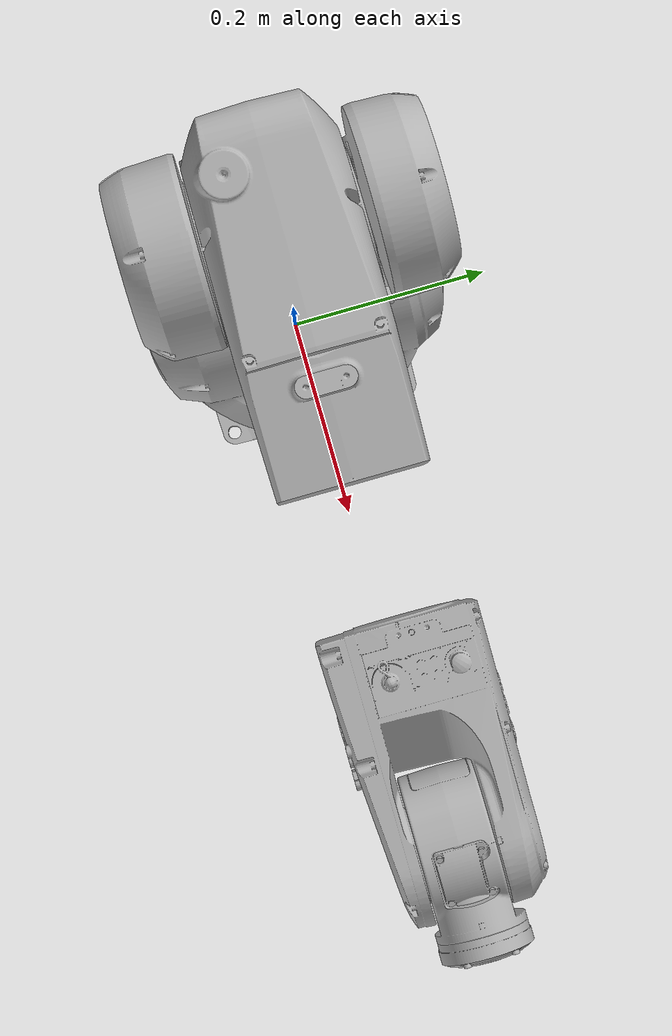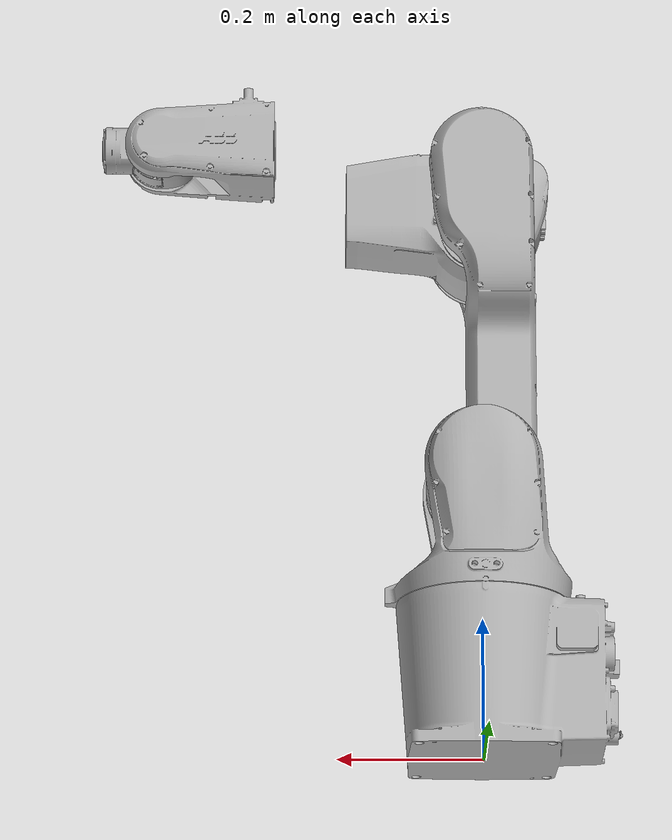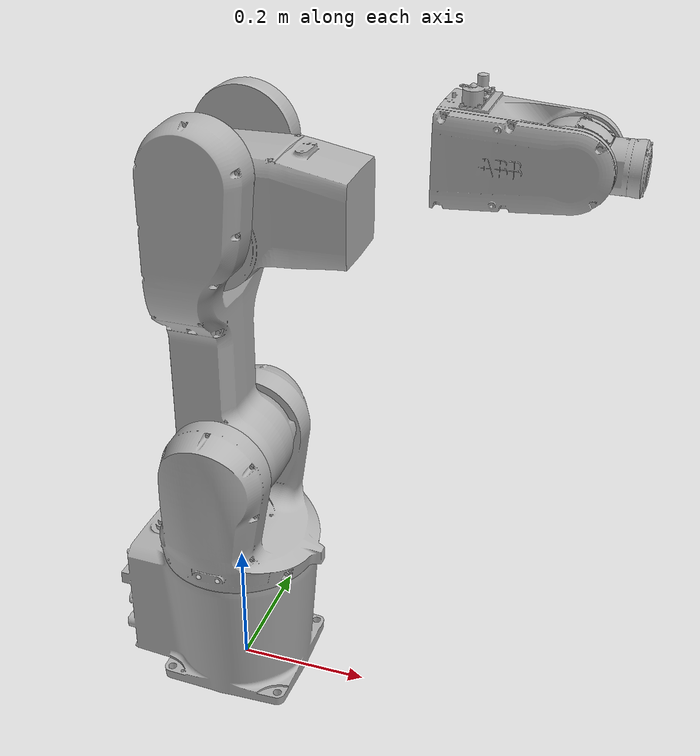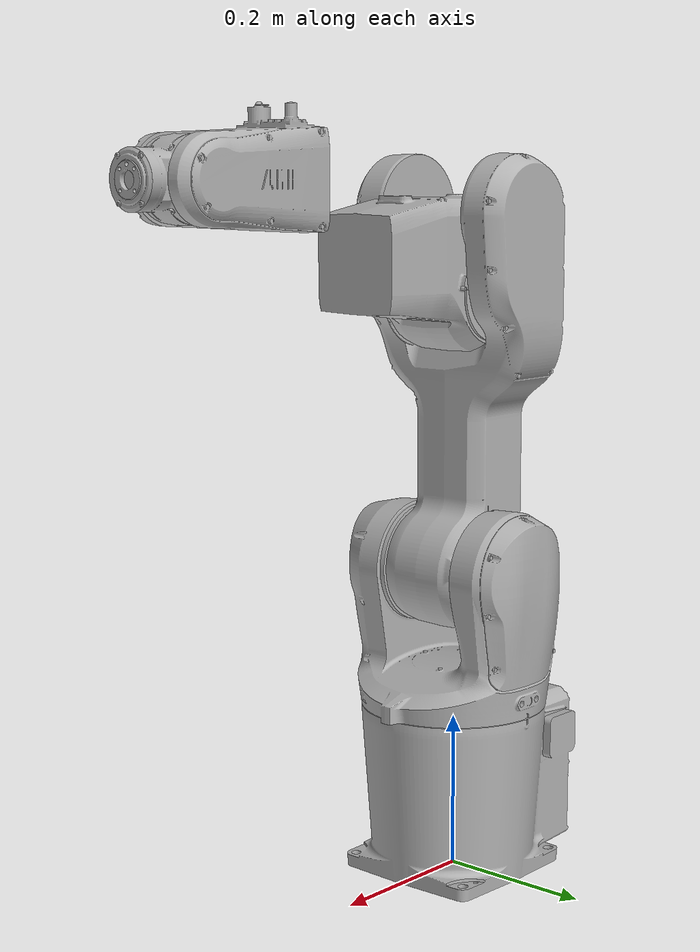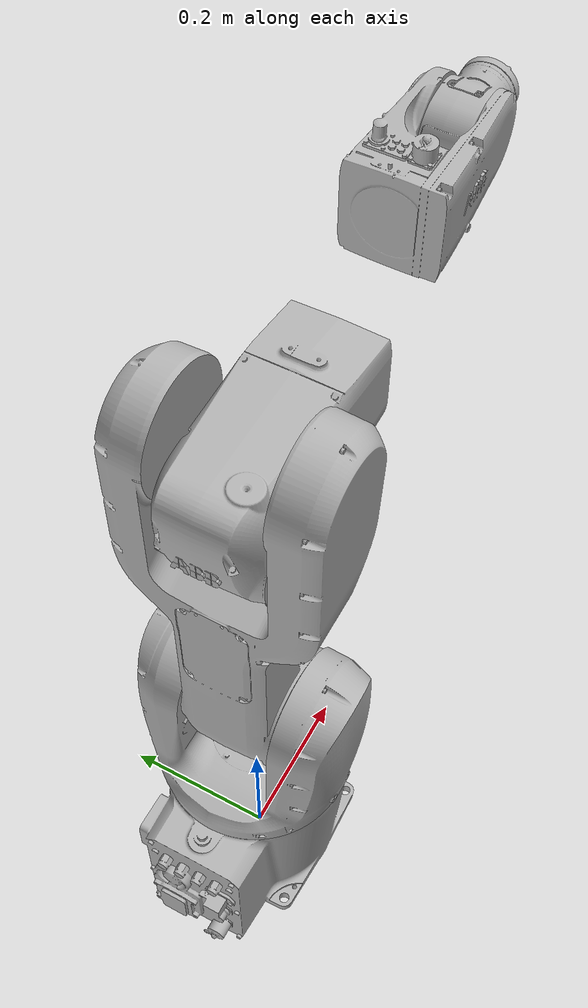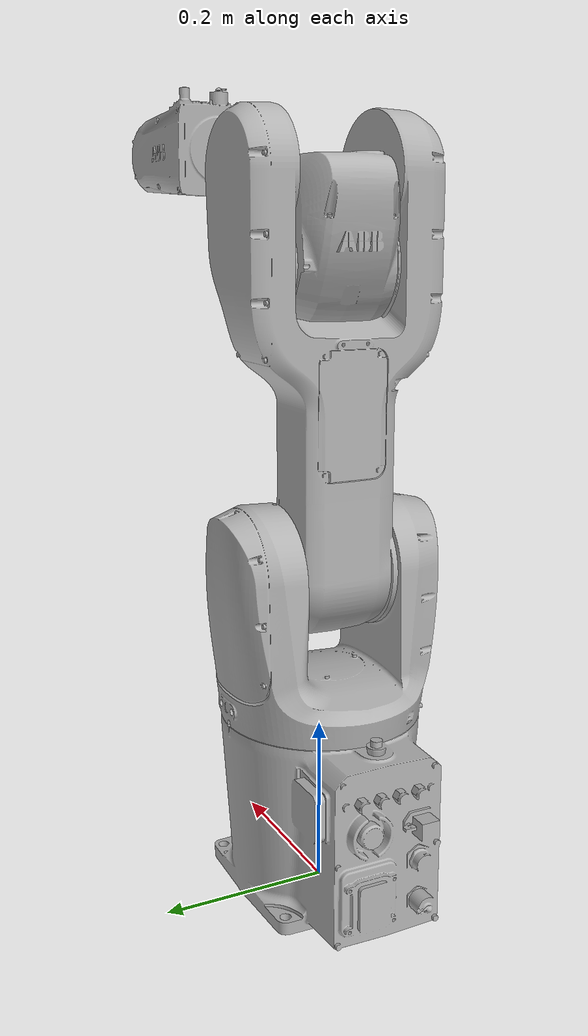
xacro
<?xml version="1.0" ?>
<robot name="IRB1200_5-90-STD" xmlns:xacro="http://www.ros.org/wiki/xacro">

<xacro:include filename="$(find IRB1200_5-90-STD_description)/urdf/materials.xacro" />
<xacro:include filename="$(find IRB1200_5-90-STD_description)/urdf/IRB1200_5-90-STD.trans" />
<xacro:include filename="$(find IRB1200_5-90-STD_description)/urdf/IRB1200_5-90-STD.gazebo" />
<link name="base_link">
  <inertial>
    <origin xyz="-0.023637177591968993 0.0004754421976295026 0.11218867494644966" rpy="0 0 0"/>
    <mass value="83.56354769083484"/>
    <inertia ixx="0.579276" iyy="0.781207" izz="0.698188" ixy="0.004313" iyz="-0.001283" ixz="-0.005073"/>
  </inertial>
  <visual>
    <origin xyz="0 0 0" rpy="0 0 0"/>
    <geometry>
      <mesh filename="package://IRB1200_5-90-STD_description/meshes/base_link.stl" scale="0.001 0.001 0.001"/>
    </geometry>
    <material name="silver"/>
  </visual>
  <collision>
    <origin xyz="0 0 0" rpy="0 0 0"/>
    <geometry>
      <mesh filename="package://IRB1200_5-90-STD_description/meshes/base_link.stl" scale="0.001 0.001 0.001"/>
    </geometry>
  </collision>
</link>

<link name="link_1_1">
  <inertial>
    <origin xyz="-0.0032935657511956266 0.0004389797692321195 0.1023344133013073" rpy="0 0 0"/>
    <mass value="47.59365241562889"/>
    <inertia ixx="0.595053" iyy="0.377165" izz="0.433688" ixy="-0.000188" iyz="0.000756" ixz="-0.004502"/>
  </inertial>
  <visual>
    <origin xyz="-0.0 -0.0 -0.219" rpy="0 0 0"/>
    <geometry>
      <mesh filename="package://IRB1200_5-90-STD_description/meshes/link_1_1.stl" scale="0.001 0.001 0.001"/>
    </geometry>
    <material name="silver"/>
  </visual>
  <collision>
    <origin xyz="-0.0 -0.0 -0.219" rpy="0 0 0"/>
    <geometry>
      <mesh filename="package://IRB1200_5-90-STD_description/meshes/link_1_1.stl" scale="0.001 0.001 0.001"/>
    </geometry>
  </collision>
</link>

<link name="link_2_1">
  <inertial>
    <origin xyz="-0.04459016571148093 0.10585337629572772 0.20122835114038373" rpy="0 0 0"/>
    <mass value="0.0002346193667311735"/>
    <inertia ixx="1e-06" iyy="1e-06" izz="0.0" ixy="-0.0" iyz="-0.0" ixz="-0.0"/>
  </inertial>
  <visual>
    <origin xyz="-0.0 0.0605 -0.3991" rpy="0 0 0"/>
    <geometry>
      <mesh filename="package://IRB1200_5-90-STD_description/meshes/link_2_1.stl" scale="0.001 0.001 0.001"/>
    </geometry>
    <material name="silver"/>
  </visual>
  <collision>
    <origin xyz="-0.0 0.0605 -0.3991" rpy="0 0 0"/>
    <geometry>
      <mesh filename="package://IRB1200_5-90-STD_description/meshes/link_2_1.stl" scale="0.001 0.001 0.001"/>
    </geometry>
  </collision>
</link>

<link name="link_3_1">
  <inertial>
    <origin xyz="0.09791045075109603 0.05809893106914741 0.03486958303185361" rpy="0 0 0"/>
    <mass value="50.4799691302992"/>
    <inertia ixx="0.160642" iyy="0.616313" izz="0.567714" ixy="0.000817" iyz="0.000117" ixz="-0.04111"/>
  </inertial>
  <visual>
    <origin xyz="-0.0 0.058 -0.8471" rpy="0 0 0"/>
    <geometry>
      <mesh filename="package://IRB1200_5-90-STD_description/meshes/link_3_1.stl" scale="0.001 0.001 0.001"/>
    </geometry>
    <material name="silver"/>
  </visual>
  <collision>
    <origin xyz="-0.0 0.058 -0.8471" rpy="0 0 0"/>
    <geometry>
      <mesh filename="package://IRB1200_5-90-STD_description/meshes/link_3_1.stl" scale="0.001 0.001 0.001"/>
    </geometry>
  </collision>
</link>

<link name="link_4_1">
  <inertial>
    <origin xyz="0.076261239206589 0.0025635992899178195 0.0007346564679856504" rpy="0 0 0"/>
    <mass value="13.07948314741883"/>
    <inertia ixx="0.027901" iyy="0.049444" izz="0.053614" ixy="-0.001885" iyz="-1.3e-05" ixz="0.000399"/>
  </inertial>
  <visual>
    <origin xyz="-0.2885 -0.0 -0.8891" rpy="0 0 0"/>
    <geometry>
      <mesh filename="package://IRB1200_5-90-STD_description/meshes/link_4_1.stl" scale="0.001 0.001 0.001"/>
    </geometry>
    <material name="silver"/>
  </visual>
  <collision>
    <origin xyz="-0.2885 -0.0 -0.8891" rpy="0 0 0"/>
    <geometry>
      <mesh filename="package://IRB1200_5-90-STD_description/meshes/link_4_1.stl" scale="0.001 0.001 0.001"/>
    </geometry>
  </collision>
</link>

<link name="link_5_1">
  <inertial>
    <origin xyz="0.009412902573906423 0.026847797041943774 -2.972957832358958e-06" rpy="0 0 0"/>
    <mass value="4.044605310431727"/>
    <inertia ixx="0.002998" iyy="0.007142" izz="0.006032" ixy="-7.2e-05" iyz="0.0" ixz="0.0"/>
  </inertial>
  <visual>
    <origin xyz="-0.451 0.0285 -0.8891" rpy="0 0 0"/>
    <geometry>
      <mesh filename="package://IRB1200_5-90-STD_description/meshes/link_5_1.stl" scale="0.001 0.001 0.001"/>
    </geometry>
    <material name="silver"/>
  </visual>
  <collision>
    <origin xyz="-0.451 0.0285 -0.8891" rpy="0 0 0"/>
    <geometry>
      <mesh filename="package://IRB1200_5-90-STD_description/meshes/link_5_1.stl" scale="0.001 0.001 0.001"/>
    </geometry>
  </collision>
</link>

<link name="link_6_1">
  <inertial>
    <origin xyz="0.0024818942259828836 -8.835029930799617e-13 -0.00036127714748035444" rpy="0 0 0"/>
    <mass value="0.03376885335108457"/>
    <inertia ixx="8e-06" iyy="4e-06" izz="4e-06" ixy="0.0" iyz="0.0" ixz="0.0"/>
  </inertial>
  <visual>
    <origin xyz="-0.528 0.0 -0.8891" rpy="0 0 0"/>
    <geometry>
      <mesh filename="package://IRB1200_5-90-STD_description/meshes/link_6_1.stl" scale="0.001 0.001 0.001"/>
    </geometry>
    <material name="silver"/>
  </visual>
  <collision>
    <origin xyz="-0.528 0.0 -0.8891" rpy="0 0 0"/>
    <geometry>
      <mesh filename="package://IRB1200_5-90-STD_description/meshes/link_6_1.stl" scale="0.001 0.001 0.001"/>
    </geometry>
  </collision>
</link>

<joint name="Revolute 1" type="continuous">
  <origin xyz="0.0 0.0 0.219" rpy="0 0 0"/>
  <parent link="base_link"/>
  <child link="link_1_1"/>
  <axis xyz="0.0 0.0 1.0"/>
</joint>

<joint name="Revolute 2" type="continuous">
  <origin xyz="0.0 -0.0605 0.1801" rpy="0 0 0"/>
  <parent link="link_1_1"/>
  <child link="link_2_1"/>
  <axis xyz="0.0 1.0 0.0"/>
</joint>

<joint name="Revolute 3" type="continuous">
  <origin xyz="0.0 0.0025 0.448" rpy="0 0 0"/>
  <parent link="link_2_1"/>
  <child link="link_3_1"/>
  <axis xyz="0.0 -1.0 0.0"/>
</joint>

<joint name="Revolute 4" type="continuous">
  <origin xyz="0.2885 0.058 0.042" rpy="0 0 0"/>
  <parent link="link_3_1"/>
  <child link="link_4_1"/>
  <axis xyz="-1.0 0.0 0.0"/>
</joint>

<joint name="Revolute 5" type="continuous">
  <origin xyz="0.1625 -0.0285 0.0" rpy="0 0 0"/>
  <parent link="link_4_1"/>
  <child link="link_5_1"/>
  <axis xyz="0.0 1.0 0.0"/>
</joint>

<joint name="Revolute 6" type="continuous">
  <origin xyz="0.077 0.0285 0.0" rpy="0 0 0"/>
  <parent link="link_5_1"/>
  <child link="link_6_1"/>
  <axis xyz="1.0 0.0 0.0"/>
</joint>

</robot>

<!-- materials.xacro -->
<robot name="IRB1200_5-90-STD" xmlns:xacro="http://www.ros.org/wiki/xacro" >

<material name="silver">
  <color rgba="0.700 0.700 0.700 1.000"/>
</material>

</robot>

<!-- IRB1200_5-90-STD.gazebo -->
<robot name="IRB1200_5-90-STD" xmlns:xacro="http://www.ros.org/wiki/xacro" >

<xacro:property name="body_color" value="Gazebo/Silver" />

<gazebo>
  <plugin name="control" filename="libgazebo_ros_control.so"/>
</gazebo>
<gazebo reference="base_link">
  <material>${body_color}</material>
  <mu1>0.2</mu1>
  <mu2>0.2</mu2>
  <selfCollide>true</selfCollide>
  <gravity>true</gravity>
</gazebo>

<gazebo reference="link_1_1">
  <material>${body_color}</material>
  <mu1>0.2</mu1>
  <mu2>0.2</mu2>
  <selfCollide>true</selfCollide>
</gazebo>

<gazebo reference="link_2_1">
  <material>${body_color}</material>
  <mu1>0.2</mu1>
  <mu2>0.2</mu2>
  <selfCollide>true</selfCollide>
</gazebo>

<gazebo reference="link_3_1">
  <material>${body_color}</material>
  <mu1>0.2</mu1>
  <mu2>0.2</mu2>
  <selfCollide>true</selfCollide>
</gazebo>

<gazebo reference="link_4_1">
  <material>${body_color}</material>
  <mu1>0.2</mu1>
  <mu2>0.2</mu2>
  <selfCollide>true</selfCollide>
</gazebo>

<gazebo reference="link_5_1">
  <material>${body_color}</material>
  <mu1>0.2</mu1>
  <mu2>0.2</mu2>
  <selfCollide>true</selfCollide>
</gazebo>

<gazebo reference="link_6_1">
  <material>${body_color}</material>
  <mu1>0.2</mu1>
  <mu2>0.2</mu2>
  <selfCollide>true</selfCollide>
</gazebo>

</robot>
